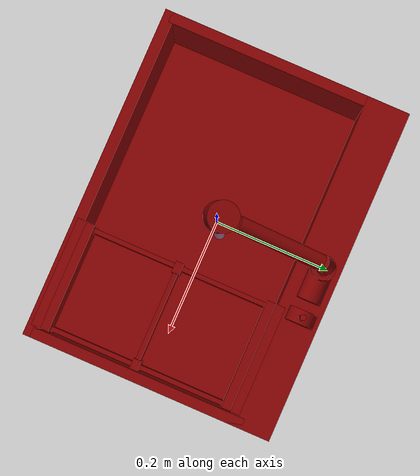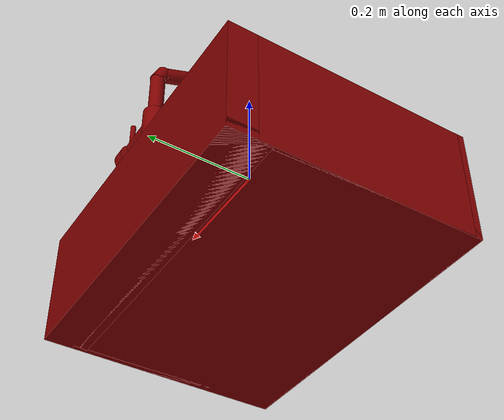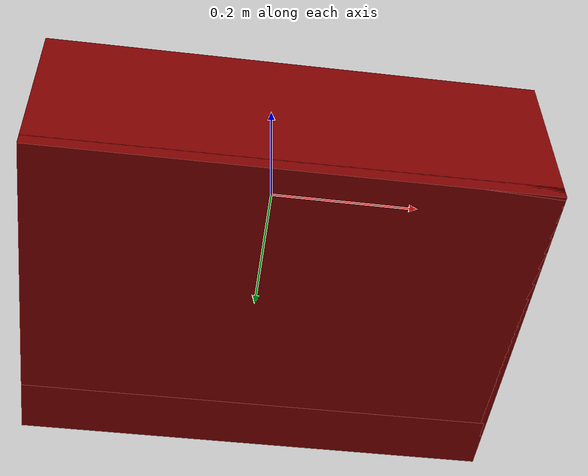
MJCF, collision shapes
<?xml version='1.0' encoding='UTF-8'?>
<mujoco model="model">
  <option timestep="0.002" gravity="0.0 0.0 -9.81"/>
  <compiler angle="radian"/>
  <asset>
    <mesh file="visuals/handle.obj" name="handle_vis"/>
    <mesh file="visuals/Body001.obj" name="Body001_vis"/>
    <mesh file="visuals/Shelf001.obj" name="Shelf001_vis"/>
    <mesh file="visuals/spout.obj" name="spout_vis"/>
    <texture file="visuals/T_BC001.png" name="Body001_material" type="2d"/>
    <material name="Body001_material" rgba="1 1 1 1.0" texture="Body001_material" shininess="0.2" specular="1"/>
    <texture file="visuals/T_BC001.png" name="handle_material" type="2d"/>
    <material name="handle_material" rgba="1 1 1 1.0" texture="handle_material" shininess="0.1" specular="2"/>
    <texture file="visuals/T_BC001.png" name="Shelf001_material" type="2d"/>
    <material name="Shelf001_material" rgba="1 1 1 1.0" texture="Shelf001_material" shininess="0.2512328028678894" specular="2"/>
    <texture file="visuals/T_BC001.png" name="spout_material" type="2d"/>
    <material name="spout_material" rgba="1 1 1 1.0" texture="spout_material" shininess="0.3" specular="1"/>
  </asset>
  <default>
    <default class="visual">
      <geom conaffinity="0" contype="0" group="1" type="mesh"/>
    </default>
    <default class="collision">
      <geom group="0" rgba="0.5 0 0 0.5" solimp="0.998 0.998 0.001" solref="0.001 2"/>
    </default>
    <default class="spawn">
      <geom group="0" rgba="1 1 1 0.5" contype="0" conaffinity="0"/>
      <site group="0" rgba="1 1 1 0.5"/>
    </default>
    <default class="region">
      <geom group="1" conaffinity="0" contype="0" rgba="0 1 0 0"/>
    </default>
  </default>
  <worldbody>
    <body>
      <body name="object">
        <geom mesh="Body001_vis" type="mesh" solimp="0.998 0.998 0.001" solref="0.001 1" friction="0.95 0.3 0.1" class="visual" material="Body001_material"/>
        <geom class="collision" type="cylinder" pos="0.00242550 0.19054627 0.01543083" size="0.020831860601902008 0.0458267480134964" quat="1.0 0.0 0.0 0.0"/>
        <geom class="collision" type="cylinder" pos="0.03143797 0.19054627 0.02048035" size="0.020831860601902008 0.029183078557252884" quat="0.7071068286895752 -0.0 0.7071067690849304 0.0"/>
        <geom class="collision" type="box" pos="-0.00000024 -0.21528600 -0.13909385" size="0.2999999523162842 0.009713868610560894 0.10869792848825455" quat="1.0 0.0 0.0 0.0"/>
        <geom class="collision" type="box" pos="-0.00000024 0.18678504 -0.13909385" size="0.2999999523162842 0.038215070962905884 0.10869792848825455" quat="1.0 0.0 0.0 0.0"/>
        <geom class="collision" type="box" pos="-0.29069009 -0.01952731 -0.13909385" size="0.009310110472142696 0.19282034039497375 0.10869792848825455" quat="1.0 0.0 0.0 0.0"/>
        <geom class="collision" type="box" pos="0.29094756 -0.01952731 -0.13909385" size="0.009052152745425701 0.19282034039497375 0.10869792848825455" quat="1.0 0.0 0.0 0.0"/>
        <geom class="collision" type="box" pos="-0.00000024 0.00000011 -0.23909389" size="0.2999999523162842 0.22499999403953552 0.008697901852428913" quat="1.0 0.0 0.0 0.0"/>
        <body name="handle">
          <joint axis="1.0 0.0 0.0" pos="0.08749077 0.19033614 0.02066548" limited="true" name="handle_temp_joint" type="hinge" range="-0.7853981633974483 0.7853981633974483" damping="0.5" frictionloss="1" armature="2"/>
          <joint axis="0.0 1.0 0.0" pos="0.08749077 0.19033614 0.02066548" limited="true" name="handle_joint" type="hinge" range="0 0.5" damping="0.5" frictionloss="1" armature="2"/>
          <geom mesh="handle_vis" type="mesh" solimp="0.998 0.998 0.001" solref="0.001 1" friction="0.95 0.3 0.1" class="visual" material="handle_material"/>
          <geom class="collision" type="cylinder" pos="0.08988164 0.19054627 0.02064822" size="0.02436080016195774 0.011946998536586761" quat="0.7071068286895752 -0.0 0.7071067690849304 0.0"/>
          <geom name="handle_main" class="collision" type="cylinder" pos="0.09118113 0.19042452 0.07095223" size="0.00486146192997694 0.03468066081404686" quat="1.0 0.0 0.0 0.0"/>
        </body>
        <body name="Shelf001">
          <joint axis="0.0 0.0 1.0" pos="0.17904258 -0.03029468 -0.08042610" limited="true" name="Shelf001_joint" range="0.0 0.12" type="slide" damping="1" frictionloss="1" armature=".01" stiffness="0.05"/>
          <geom mesh="Shelf001_vis" type="mesh" solimp="0.998 0.998 0.001" solref="0.001 1" friction="0.95 0.3 0.1" class="visual" material="Shelf001_material"/>
          <geom class="collision" type="box" pos="0.27316588 -0.02875032 -0.08593646" size="0.004088487941771746 0.17451916635036469 0.03176761046051979" quat="1.0 0.0 0.0 0.0"/>
          <geom class="collision" type="box" pos="0.09251704 -0.02875032 -0.08593646" size="0.004088487941771746 0.17451916635036469 0.03176761046051979" quat="1.0 0.0 0.0 0.0"/>
          <geom class="collision" type="box" pos="0.18248585 -0.02875032 -0.11128588" size="0.08870105445384979 0.17451916635036469 0.004088497254997492" quat="1.0 0.0 0.0 0.0"/>
          <geom class="collision" type="box" pos="0.18548042 -0.03076428 -0.07711016" size="0.09359805285930634 0.004088507499545813 0.04059391841292381" quat="1.0 0.0 0.0 0.0"/>
          <geom class="collision" type="box" pos="0.18213390 -0.19452693 -0.07293586" size="0.09749997407197952 0.007540710736066103 0.04476821422576904" quat="1.0 0.0 0.0 0.0"/>
          <geom class="collision" type="box" pos="0.27171329 -0.03073050 -0.07392727" size="0.009315894916653633 0.007012831978499889 0.04377679526805878" quat="1.0 0.0 0.0 0.0"/>
          <geom class="collision" type="box" pos="0.09479196 -0.03073050 -0.07392727" size="0.010158056393265724 0.007012831978499889 0.04377679526805878" quat="1.0 0.0 0.0 0.0"/>
          <geom class="collision" type="box" pos="0.18190941 0.13707048 -0.07293587" size="0.09772445261478424 0.008141649886965752 0.04476820304989815" quat="1.0 0.0 0.0 0.0"/>
          <geom class="collision" type="box" pos="0.18190941 -0.20989490 -0.02912675" size="0.09772445261478424 0.008141649886965752 0.0009591076523065567" quat="1.0 0.0 0.0 0.0"/>
          <geom class="collision" type="box" pos="0.18190941 0.15409261 -0.02910116" size="0.09772445261478424 0.008141649886965752 0.0010157052893191576" quat="1.0 0.0 0.0 0.0"/>
        </body>
        <body name="spout">
          <joint axis="0.0 0.0 1.0" pos="0.00254977 0.19048777 0.14107297" limited="true" name="spout_joint" range="-0.8726646259971648 0.8726646259971648" type="hinge" damping="10"/>
          <site type="cylinder" rgba="0.5 0.75 1 0.5" size="0.010260341688990593 0.21937322616577148" pos="0.00285865 0.00582295 -0.01777699" name="water"/>
          <geom mesh="spout_vis" type="mesh" solimp="0.998 0.998 0.001" solref="0.001 1" friction="0.95 0.3 0.1" class="visual" material="spout_material"/>
          <geom class="collision" type="cylinder" pos="0.00242550 0.19054627 0.10531314" size="0.013487700372934341 0.04282769560813904" quat="1.0 0.0 0.0 0.0"/>
          <geom class="collision" type="cylinder" pos="0.00242550 0.10865665 0.19538514" size="0.013487700372934341 0.07807393372058868" quat="0.8297640085220337 0.5581144094467163 0.0 0.0"/>
          <geom class="collision" type="cylinder" pos="0.00242550 0.18619928 0.15819191" size="0.013487700372934341 0.015277374535799026" quat="0.97535640001297 0.22063519060611725 0.0 0.0"/>
          <geom class="collision" type="cylinder" pos="0.00242550 0.00859926 0.21808521" size="0.02633121982216835 0.02346637286245823" quat="0.9967784881591797 -0.08020363748073578 -0.0 0.0" name="spout_main"/>
        </body>
        <geom class="region" name="reg_basin" type="box" pos="-0.09791702499999999 -0.02835741 -0.127571435" size="0.177709465 0.1705806 0.097098945"/>
        <geom class="region" name="reg_main" type="box" pos="-2.500000000071889e-07 7.99999999995249e-08 -0.137979705" size="0.30099995 0.22599998 0.110812065"/>
      </body>
    </body>
  </worldbody>
  <actuator>
    <motor name="handle_joint_actuator" joint="handle_joint" gear="10"/>
    <motor name="handle_temp_joint_actuator" joint="handle_temp_joint" gear="10"/>
    <motor name="Shelf001_joint_actuator" joint="Shelf001_joint" gear="10"/>
    <motor name="spout_joint_actuator" joint="spout_joint" gear="10"/>
  </actuator>
</mujoco>
